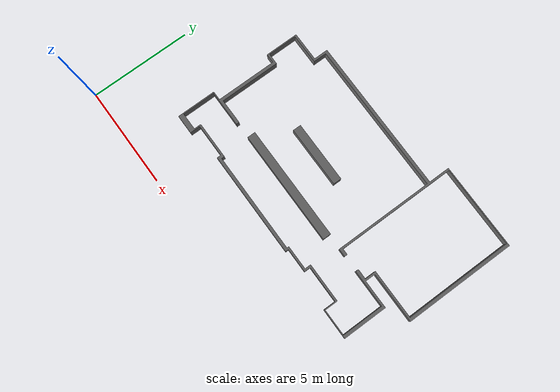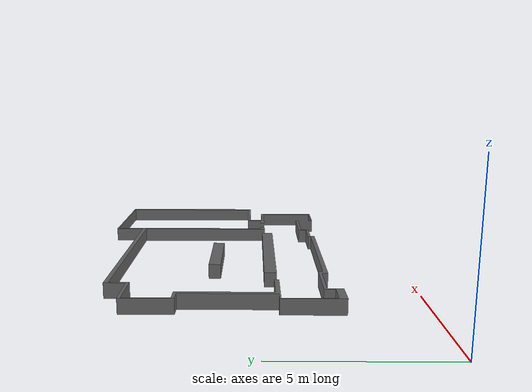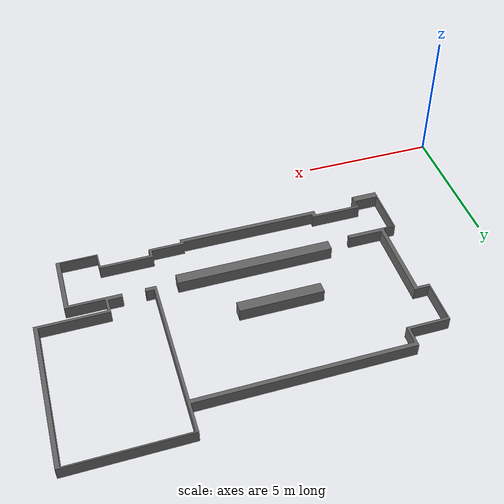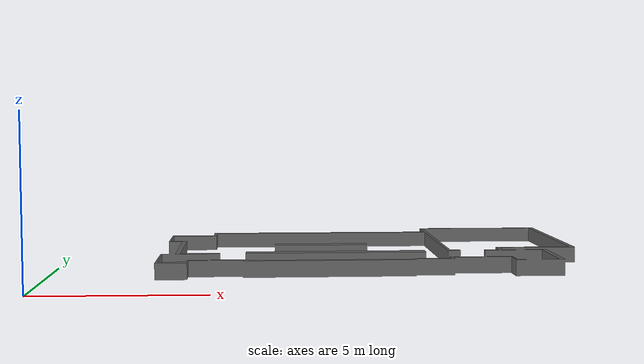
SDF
<?xml version='1.0' encoding='utf-8'?>
<sdf version="1.7">
  <model name="mapv5">
    <static>true</static>
    <link name="walls_high">
      <visual name="walls_high_visual">
        <geometry>
          <mesh>
            <uri>model://mapv5/meshes/walls_high.stl</uri>
            <scale>1 1 0.25</scale>
          </mesh>
        </geometry>
        <material>
          <ambient>0.30 0.30 0.30 1</ambient>
          <diffuse>0.40 0.40 0.40 1</diffuse>
          <specular>0.1 0.1 0.1 1</specular>
        </material>
      </visual>
      <collision name="walls_high_collision">
        <geometry>
          <mesh>
            <uri>model://mapv5/meshes/walls_high.stl</uri>
            <scale>1 1 0.25</scale>
          </mesh>
        </geometry>
        <surface>
          <contact>
            <collide_bitmask>0x01</collide_bitmask>
          </contact>
        </surface>
      </collision>
    </link>
  </model>
</sdf>
